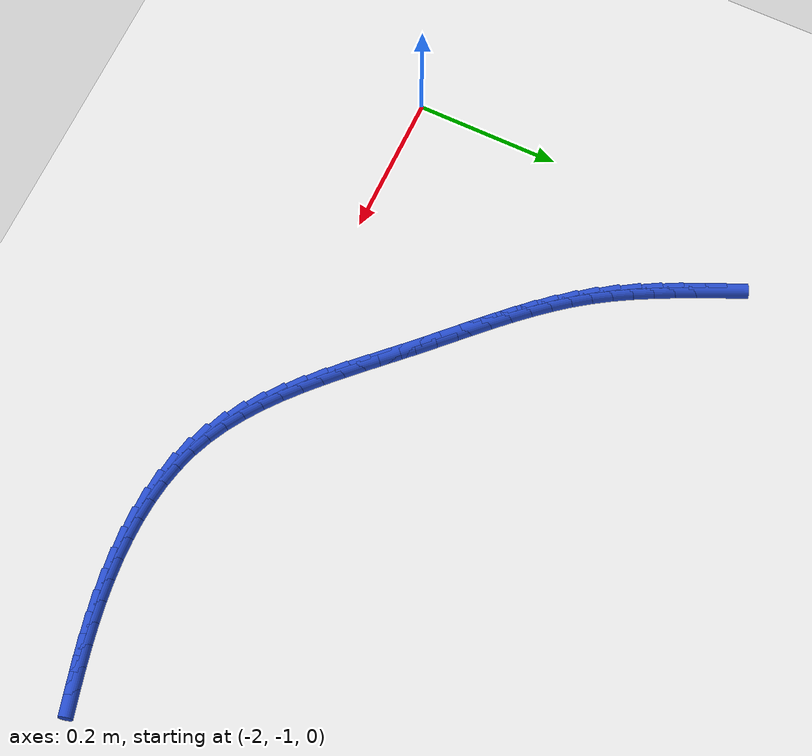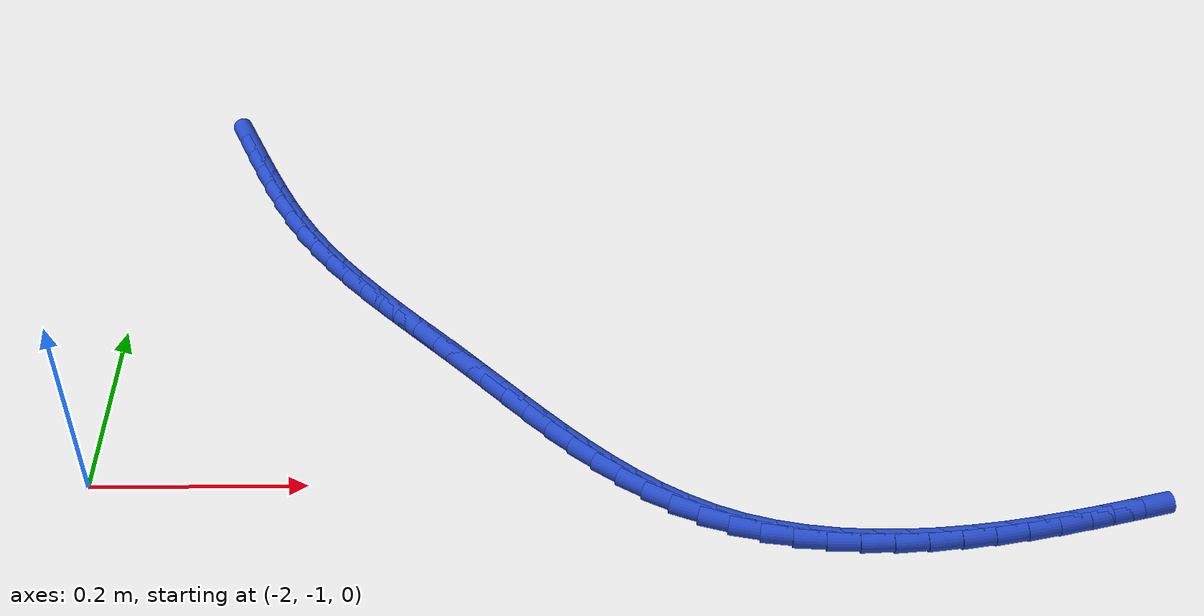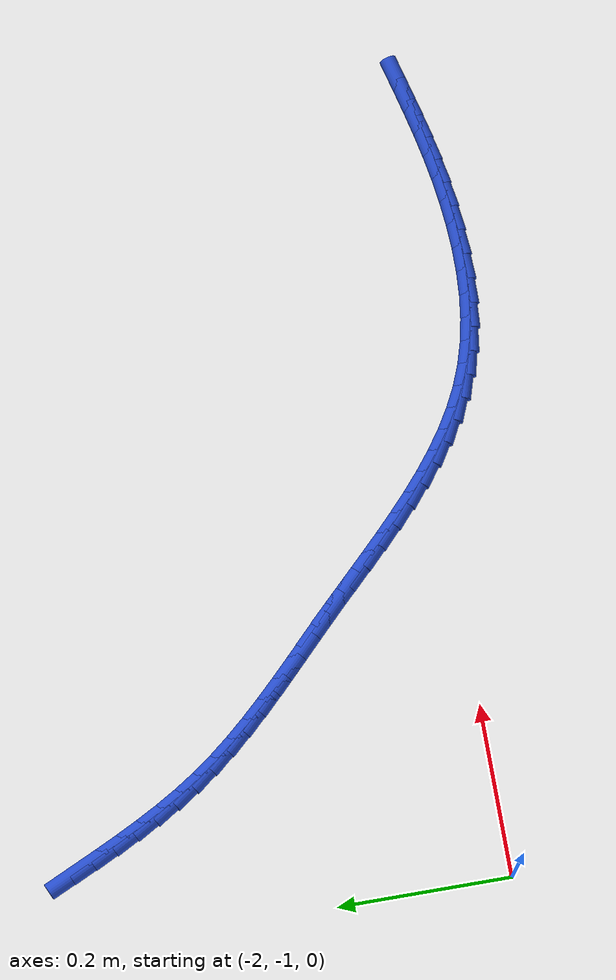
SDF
<sdf version="1.6">
 <world name="default">
  <model name="ground_plane">
   <static>1</static>
   <link name="link">
    <collision name="collision">
     <geometry><plane><normal>0 0 1</normal><size>100 100</size></plane></geometry>
     <surface><friction><ode><mu>100</mu><mu2>50</mu2></ode></friction></surface>
    </collision>
    <visual name="visual">
     <cast_shadows>0</cast_shadows>
     <geometry><plane><normal>0 0 1</normal><size>100 100</size></plane></geometry>
     <material>
      <script><uri>file://media/materials/scripts/gazebo.material</uri><name>Gazebo/WhiteGlow</name></script>
     </material>
    </visual>
   </link>
  </model>
  <model name="line">
   <link name="link_134">
    <pose>-1.9121277044894152 -0.5202723638740321 0.01 0 1.57 -1.1365619655178198</pose>
    <collision name="collision">
     <geometry><cylinder><radius>0.01</radius><length>0.08</length></cylinder></geometry>
    </collision>
    <visual name="visual">
     <material>
      <script><name>Gazebo/Blue</name><uri>file://media/materials/scripts/gazebo.material</uri></script>
     </material>
     <geometry><cylinder><radius>0.01</radius><length>0.08</length></cylinder></geometry>
    </visual>
   </link>
   <link name="link_135">
    <pose>-1.8999822562680573 -0.54646166998513 0.01 0 1.57 -1.1250824860671442</pose>
    <collision name="collision">
     <geometry><cylinder><radius>0.01</radius><length>0.08</length></cylinder></geometry>
    </collision>
    <visual name="visual">
     <material>
      <script><name>Gazebo/Blue</name><uri>file://media/materials/scripts/gazebo.material</uri></script>
     </material>
     <geometry><cylinder><radius>0.01</radius><length>0.08</length></cylinder></geometry>
    </visual>
   </link>
   <link name="link_136">
    <pose>-1.88761552813609 -0.5723454178808727 0.01 0 1.57 -1.1052983216889336</pose>
    <collision name="collision">
     <geometry><cylinder><radius>0.01</radius><length>0.08</length></cylinder></geometry>
    </collision>
    <visual name="visual">
     <material>
      <script><name>Gazebo/Blue</name><uri>file://media/materials/scripts/gazebo.material</uri></script>
     </material>
     <geometry><cylinder><radius>0.01</radius><length>0.08</length></cylinder></geometry>
    </visual>
   </link>
   <link name="link_137">
    <pose>-1.8748222082175943 -0.5978141304607995 0.01 0 1.57 -1.0770498039358254</pose>
    <collision name="collision">
     <geometry><cylinder><radius>0.01</radius><length>0.08</length></cylinder></geometry>
    </collision>
    <visual name="visual">
     <material>
      <script><name>Gazebo/Blue</name><uri>file://media/materials/scripts/gazebo.material</uri></script>
     </material>
     <geometry><cylinder><radius>0.01</radius><length>0.08</length></cylinder></geometry>
    </visual>
   </link>
   <link name="link_138">
    <pose>-1.8613969846366496 -0.6227583306244485 0.01 0 1.57 -1.040224703310335</pose>
    <collision name="collision">
     <geometry><cylinder><radius>0.01</radius><length>0.08</length></cylinder></geometry>
    </collision>
    <visual name="visual">
     <material>
      <script><name>Gazebo/Blue</name><uri>file://media/materials/scripts/gazebo.material</uri></script>
     </material>
     <geometry><cylinder><radius>0.01</radius><length>0.08</length></cylinder></geometry>
    </visual>
   </link>
   <link name="link_139">
    <pose>-1.8471345455173367 -0.6470685412713588 0.01 0 1.57 -0.9948214372820812</pose>
    <collision name="collision">
     <geometry><cylinder><radius>0.01</radius><length>0.08</length></cylinder></geometry>
    </collision>
    <visual name="visual">
     <material>
      <script><name>Gazebo/Blue</name><uri>file://media/materials/scripts/gazebo.material</uri></script>
     </material>
     <geometry><cylinder><radius>0.01</radius><length>0.08</length></cylinder></geometry>
    </visual>
   </link>
   <link name="link_140">
    <pose>-1.8318295789837347 -0.6706352853010692 0.01 0 1.57 -0.9426707477046936</pose>
    <collision name="collision">
     <geometry><cylinder><radius>0.01</radius><length>0.08</length></cylinder></geometry>
    </collision>
    <visual name="visual">
     <material>
      <script><name>Gazebo/Blue</name><uri>file://media/materials/scripts/gazebo.material</uri></script>
     </material>
     <geometry><cylinder><radius>0.01</radius><length>0.08</length></cylinder></geometry>
    </visual>
   </link>
   <link name="link_141">
    <pose>-1.815314615006151 -0.6933754089376801 0.01 0 1.57 -0.8944924733724051</pose>
    <collision name="collision">
     <geometry><cylinder><radius>0.01</radius><length>0.08</length></cylinder></geometry>
    </collision>
    <visual name="visual">
     <material>
      <script><name>Gazebo/Blue</name><uri>file://media/materials/scripts/gazebo.material</uri></script>
     </material>
     <geometry><cylinder><radius>0.01</radius><length>0.08</length></cylinder></geometry>
    </visual>
   </link>
   <link name="link_142">
    <pose>-1.7976609901961484 -0.7153718756895309 0.01 0 1.57 -0.8545472297518473</pose>
    <collision name="collision">
     <geometry><cylinder><radius>0.01</radius><length>0.08</length></cylinder></geometry>
    </collision>
    <visual name="visual">
     <material>
      <script><name>Gazebo/Blue</name><uri>file://media/materials/scripts/gazebo.material</uri></script>
     </material>
     <geometry><cylinder><radius>0.01</radius><length>0.08</length></cylinder></geometry>
    </visual>
   </link>
   <link name="link_143">
    <pose>-1.779032942828099 -0.7367722727782956 0.01 0 1.57 -0.8228659583959789</pose>
    <collision name="collision">
     <geometry><cylinder><radius>0.01</radius><length>0.08</length></cylinder></geometry>
    </collision>
    <visual name="visual">
     <material>
      <script><name>Gazebo/Blue</name><uri>file://media/materials/scripts/gazebo.material</uri></script>
     </material>
     <geometry><cylinder><radius>0.01</radius><length>0.08</length></cylinder></geometry>
    </visual>
   </link>
   <link name="link_144">
    <pose>-1.7595949193041573 -0.7577243322022827 0.01 0 1.57 -0.7993385977537275</pose>
    <collision name="collision">
     <geometry><cylinder><radius>0.01</radius><length>0.08</length></cylinder></geometry>
    </collision>
    <visual name="visual">
     <material>
      <script><name>Gazebo/Blue</name><uri>file://media/materials/scripts/gazebo.material</uri></script>
     </material>
     <geometry><cylinder><radius>0.01</radius><length>0.08</length></cylinder></geometry>
    </visual>
   </link>
   <link name="link_145">
    <pose>-1.739511366026476 -0.7783757859597984 0.01 0 1.57 -0.7837895100036147</pose>
    <collision name="collision">
     <geometry><cylinder><radius>0.01</radius><length>0.08</length></cylinder></geometry>
    </collision>
    <visual name="visual">
     <material>
      <script><name>Gazebo/Blue</name><uri>file://media/materials/scripts/gazebo.material</uri></script>
     </material>
     <geometry><cylinder><radius>0.01</radius><length>0.08</length></cylinder></geometry>
    </visual>
   </link>
   <link name="link_146">
    <pose>-1.7189467293972074 -0.7988743660491513 0.01 0 1.57 -0.7760247132437811</pose>
    <collision name="collision">
     <geometry><cylinder><radius>0.01</radius><length>0.08</length></cylinder></geometry>
    </collision>
    <visual name="visual">
     <material>
      <script><name>Gazebo/Blue</name><uri>file://media/materials/scripts/gazebo.material</uri></script>
     </material>
     <geometry><cylinder><radius>0.01</radius><length>0.08</length></cylinder></geometry>
    </visual>
   </link>
   <link name="link_147">
    <pose>-1.6980654558185047 -0.8193678044686483 0.01 0 1.57 -0.7758606504650858</pose>
    <collision name="collision">
     <geometry><cylinder><radius>0.01</radius><length>0.08</length></cylinder></geometry>
    </collision>
    <visual name="visual">
     <material>
      <script><name>Gazebo/Blue</name><uri>file://media/materials/scripts/gazebo.material</uri></script>
     </material>
     <geometry><cylinder><radius>0.01</radius><length>0.08</length></cylinder></geometry>
    </visual>
   </link>
   <link name="link_148">
    <pose>-1.6770319916925207 -0.8400038332165982 0.01 0 1.57 -0.7830853549436534</pose>
    <collision name="collision">
     <geometry><cylinder><radius>0.01</radius><length>0.08</length></cylinder></geometry>
    </collision>
    <visual name="visual">
     <material>
      <script><name>Gazebo/Blue</name><uri>file://media/materials/scripts/gazebo.material</uri></script>
     </material>
     <geometry><cylinder><radius>0.01</radius><length>0.08</length></cylinder></geometry>
    </visual>
   </link>
   <link name="link_149">
    <pose>-1.6560099157142654 -0.8609288933309042 0.01 0 1.57 -0.7923285794267018</pose>
    <collision name="collision">
     <geometry><cylinder><radius>0.01</radius><length>0.08</length></cylinder></geometry>
    </collision>
    <visual name="visual">
     <material>
      <script><name>Gazebo/Blue</name><uri>file://media/materials/scripts/gazebo.material</uri></script>
     </material>
     <geometry><cylinder><radius>0.01</radius><length>0.08</length></cylinder></geometry>
    </visual>
   </link>
   <link name="link_150">
    <pose>-1.6350738909765512 -0.8821571386804246 0.01 0 1.57 -0.7939360668574725</pose>
    <collision name="collision">
     <geometry><cylinder><radius>0.01</radius><length>0.08</length></cylinder></geometry>
    </collision>
    <visual name="visual">
     <material>
      <script><name>Gazebo/Blue</name><uri>file://media/materials/scripts/gazebo.material</uri></script>
     </material>
     <geometry><cylinder><radius>0.01</radius><length>0.08</length></cylinder></geometry>
    </visual>
   </link>
   <link name="link_151">
    <pose>-1.614133928268559 -0.9034577561474947 0.01 0 1.57 -0.7869135212633042</pose>
    <collision name="collision">
     <geometry><cylinder><radius>0.01</radius><length>0.08</length></cylinder></geometry>
    </collision>
    <visual name="visual">
     <material>
      <script><name>Gazebo/Blue</name><uri>file://media/materials/scripts/gazebo.material</uri></script>
     </material>
     <geometry><cylinder><radius>0.01</radius><length>0.08</length></cylinder></geometry>
    </visual>
   </link>
   <link name="link_152">
    <pose>-1.593082196037934 -0.9245733870724703 0.01 0 1.57 -0.7711411007469923</pose>
    <collision name="collision">
     <geometry><cylinder><radius>0.01</radius><length>0.08</length></cylinder></geometry>
    </collision>
    <visual name="visual">
     <material>
      <script><name>Gazebo/Blue</name><uri>file://media/materials/scripts/gazebo.material</uri></script>
     </material>
     <geometry><cylinder><radius>0.01</radius><length>0.08</length></cylinder></geometry>
    </visual>
   </link>
   <link name="link_153">
    <pose>-1.5718108627323222 -0.9452466727957074 0.01 0 1.57 -0.7463251493228126</pose>
    <collision name="collision">
     <geometry><cylinder><radius>0.01</radius><length>0.08</length></cylinder></geometry>
    </collision>
    <visual name="visual">
     <material>
      <script><name>Gazebo/Blue</name><uri>file://media/materials/scripts/gazebo.material</uri></script>
     </material>
     <geometry><cylinder><radius>0.01</radius><length>0.08</length></cylinder></geometry>
    </visual>
   </link>
   <link name="link_154">
    <pose>-1.5502120967993707 -0.9652202546575607 0.01 0 1.57 -0.7120229341404106</pose>
    <collision name="collision">
     <geometry><cylinder><radius>0.01</radius><length>0.08</length></cylinder></geometry>
    </collision>
    <visual name="visual">
     <material>
      <script><name>Gazebo/Blue</name><uri>file://media/materials/scripts/gazebo.material</uri></script>
     </material>
     <geometry><cylinder><radius>0.01</radius><length>0.08</length></cylinder></geometry>
    </visual>
   </link>
   <link name="link_155">
    <pose>-1.5281780666867248 -0.9842367739983863 0.01 0 1.57 -0.6676902457602798</pose>
    <collision name="collision">
     <geometry><cylinder><radius>0.01</radius><length>0.08</length></cylinder></geometry>
    </collision>
    <visual name="visual">
     <material>
      <script><name>Gazebo/Blue</name><uri>file://media/materials/scripts/gazebo.material</uri></script>
     </material>
     <geometry><cylinder><radius>0.01</radius><length>0.08</length></cylinder></geometry>
    </visual>
   </link>
   <link name="link_156">
    <pose>-1.5056009408420306 -1.0020388721585396 0.01 0 1.57 -0.6127652750655737</pose>
    <collision name="collision">
     <geometry><cylinder><radius>0.01</radius><length>0.08</length></cylinder></geometry>
    </collision>
    <visual name="visual">
     <material>
      <script><name>Gazebo/Blue</name><uri>file://media/materials/scripts/gazebo.material</uri></script>
     </material>
     <geometry><cylinder><radius>0.01</radius><length>0.08</length></cylinder></geometry>
    </visual>
   </link>
   <link name="link_157">
    <pose>-1.4823728877129327 -1.0183691904783767 0.01 0 1.57 -0.5468044051398195</pose>
    <collision name="collision">
     <geometry><cylinder><radius>0.01</radius><length>0.08</length></cylinder></geometry>
    </collision>
    <visual name="visual">
     <material>
      <script><name>Gazebo/Blue</name><uri>file://media/materials/scripts/gazebo.material</uri></script>
     </material>
     <geometry><cylinder><radius>0.01</radius><length>0.08</length></cylinder></geometry>
    </visual>
   </link>
   <link name="link_158">
    <pose>-1.4583860757470792 -1.0329703702982524 0.01 0 1.57 -0.4696801737031037</pose>
    <collision name="collision">
     <geometry><cylinder><radius>0.01</radius><length>0.08</length></cylinder></geometry>
    </collision>
    <visual name="visual">
     <material>
      <script><name>Gazebo/Blue</name><uri>file://media/materials/scripts/gazebo.material</uri></script>
     </material>
     <geometry><cylinder><radius>0.01</radius><length>0.08</length></cylinder></geometry>
    </visual>
   </link>
   <link name="link_159">
    <pose>-1.433532673392115 -1.0455850529585227 0.01 0 1.57 -0.38187725508571774</pose>
    <collision name="collision">
     <geometry><cylinder><radius>0.01</radius><length>0.08</length></cylinder></geometry>
    </collision>
    <visual name="visual">
     <material>
      <script><name>Gazebo/Blue</name><uri>file://media/materials/scripts/gazebo.material</uri></script>
     </material>
     <geometry><cylinder><radius>0.01</radius><length>0.08</length></cylinder></geometry>
    </visual>
   </link>
   <link name="link_160">
    <pose>-1.407705538794114 -1.055957000142975 0.01 0 1.57 -0.2900935034475798</pose>
    <collision name="collision">
     <geometry><cylinder><radius>0.01</radius><length>0.08</length></cylinder></geometry>
    </collision>
    <visual name="visual">
     <material>
      <script><name>Gazebo/Blue</name><uri>file://media/materials/scripts/gazebo.material</uri></script>
     </material>
     <geometry><cylinder><radius>0.01</radius><length>0.08</length></cylinder></geometry>
    </visual>
   </link>
   <link name="link_161">
    <pose>-1.380880456768478 -1.0639646792931208 0.01 0 1.57 -0.20591538325945163</pose>
    <collision name="collision">
     <geometry><cylinder><radius>0.01</radius><length>0.08</length></cylinder></geometry>
    </collision>
    <visual name="visual">
     <material>
      <script><name>Gazebo/Blue</name><uri>file://media/materials/scripts/gazebo.material</uri></script>
     </material>
     <geometry><cylinder><radius>0.01</radius><length>0.08</length></cylinder></geometry>
    </visual>
   </link>
   <link name="link_162">
    <pose>-1.3531939854715853 -1.0697477174375332 0.01 0 1.57 -0.13055256098328807</pose>
    <collision name="collision">
     <geometry><cylinder><radius>0.01</radius><length>0.08</length></cylinder></geometry>
    </collision>
    <visual name="visual">
     <material>
      <script><name>Gazebo/Blue</name><uri>file://media/materials/scripts/gazebo.material</uri></script>
     </material>
     <geometry><cylinder><radius>0.01</radius><length>0.08</length></cylinder></geometry>
    </visual>
   </link>
   <link name="link_163">
    <pose>-1.3248011155129538 -1.0734756832096595 0.01 0 1.57 -0.06356971490601404</pose>
    <collision name="collision">
     <geometry><cylinder><radius>0.01</radius><length>0.08</length></cylinder></geometry>
    </collision>
    <visual name="visual">
     <material>
      <script><name>Gazebo/Blue</name><uri>file://media/materials/scripts/gazebo.material</uri></script>
     </material>
     <geometry><cylinder><radius>0.01</radius><length>0.08</length></cylinder></geometry>
    </visual>
   </link>
   <link name="link_164">
    <pose>-1.2958568375020993 -1.0753181452429479 0.01 0 1.57 -0.00431230894985507</pose>
    <collision name="collision">
     <geometry><cylinder><radius>0.01</radius><length>0.08</length></cylinder></geometry>
    </collision>
    <visual name="visual">
     <material>
      <script><name>Gazebo/Blue</name><uri>file://media/materials/scripts/gazebo.material</uri></script>
     </material>
     <geometry><cylinder><radius>0.01</radius><length>0.08</length></cylinder></geometry>
    </visual>
   </link>
   <link name="link_165">
    <pose>-1.2665161420485391 -1.0754446721708468 0.01 0 1.57 0.04795973578860505</pose>
    <collision name="collision">
     <geometry><cylinder><radius>0.01</radius><length>0.08</length></cylinder></geometry>
    </collision>
    <visual name="visual">
     <material>
      <script><name>Gazebo/Blue</name><uri>file://media/materials/scripts/gazebo.material</uri></script>
     </material>
     <geometry><cylinder><radius>0.01</radius><length>0.08</length></cylinder></geometry>
    </visual>
   </link>
   <link name="link_166">
    <pose>-1.2369340197617884 -1.0740248326268036 0.01 0 1.57 0.09398495500315959</pose>
    <collision name="collision">
     <geometry><cylinder><radius>0.01</radius><length>0.08</length></cylinder></geometry>
    </collision>
    <visual name="visual">
     <material>
      <script><name>Gazebo/Blue</name><uri>file://media/materials/scripts/gazebo.material</uri></script>
     </material>
     <geometry><cylinder><radius>0.01</radius><length>0.08</length></cylinder></geometry>
    </visual>
   </link>
   <link name="link_167">
    <pose>-1.207265461251366 -1.0712281952442664 0.01 0 1.57 0.13444970649528953</pose>
    <collision name="collision">
     <geometry><cylinder><radius>0.01</radius><length>0.08</length></cylinder></geometry>
    </collision>
    <visual name="visual">
     <material>
      <script><name>Gazebo/Blue</name><uri>file://media/materials/scripts/gazebo.material</uri></script>
     </material>
     <geometry><cylinder><radius>0.01</radius><length>0.08</length></cylinder></geometry>
    </visual>
   </link>
   <link name="link_168">
    <pose>-1.1776654571267873 -1.0672243286566832 0.01 0 1.57 0.16996222252499218</pose>
    <collision name="collision">
     <geometry><cylinder><radius>0.01</radius><length>0.08</length></cylinder></geometry>
    </collision>
    <visual name="visual">
     <material>
      <script><name>Gazebo/Blue</name><uri>file://media/materials/scripts/gazebo.material</uri></script>
     </material>
     <geometry><cylinder><radius>0.01</radius><length>0.08</length></cylinder></geometry>
    </visual>
   </link>
   <link name="link_169">
    <pose>-1.1482889979975692 -1.0621828014975019 0.01 0 1.57 0.20085717857878893</pose>
    <collision name="collision">
     <geometry><cylinder><radius>0.01</radius><length>0.08</length></cylinder></geometry>
    </collision>
    <visual name="visual">
     <material>
      <script><name>Gazebo/Blue</name><uri>file://media/materials/scripts/gazebo.material</uri></script>
     </material>
     <geometry><cylinder><radius>0.01</radius><length>0.08</length></cylinder></geometry>
    </visual>
   </link>
   <link name="link_170">
    <pose>-1.1192791855639184 -1.0562763284917702 0.01 0 1.57 0.22534496534491535</pose>
    <collision name="collision">
     <geometry><cylinder><radius>0.01</radius><length>0.08</length></cylinder></geometry>
    </collision>
    <visual name="visual">
     <material>
      <script><name>Gazebo/Blue</name><uri>file://media/materials/scripts/gazebo.material</uri></script>
     </material>
     <geometry><cylinder><radius>0.01</radius><length>0.08</length></cylinder></geometry>
    </visual>
   </link>
   <link name="link_171">
    <pose>-1.0906467080458118 -1.0497126641589332 0.01 0 1.57 0.24196620771188806</pose>
    <collision name="collision">
     <geometry><cylinder><radius>0.01</radius><length>0.08</length></cylinder></geometry>
    </collision>
    <visual name="visual">
     <material>
      <script><name>Gazebo/Blue</name><uri>file://media/materials/scripts/gazebo.material</uri></script>
     </material>
     <geometry><cylinder><radius>0.01</radius><length>0.08</length></cylinder></geometry>
    </visual>
   </link>
   <link name="link_172">
    <pose>-1.0623194991901823 -1.0427214618441132 0.01 0 1.57 0.25049621556242013</pose>
    <collision name="collision">
     <geometry><cylinder><radius>0.01</radius><length>0.08</length></cylinder></geometry>
    </collision>
    <visual name="visual">
     <material>
      <script><name>Gazebo/Blue</name><uri>file://media/materials/scripts/gazebo.material</uri></script>
     </material>
     <geometry><cylinder><radius>0.01</radius><length>0.08</length></cylinder></geometry>
    </visual>
   </link>
  </model>
 </world>
</sdf>
